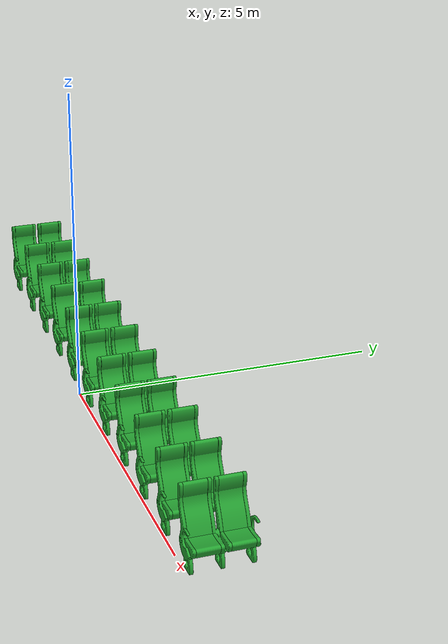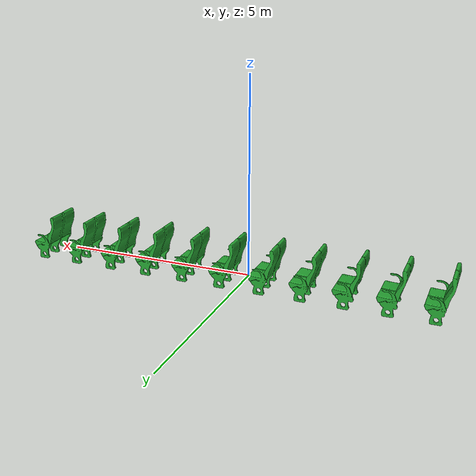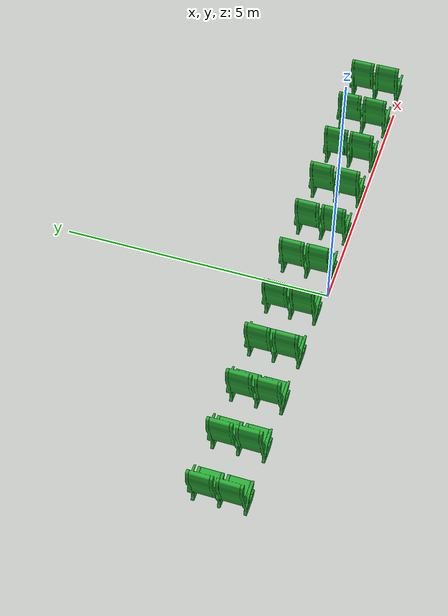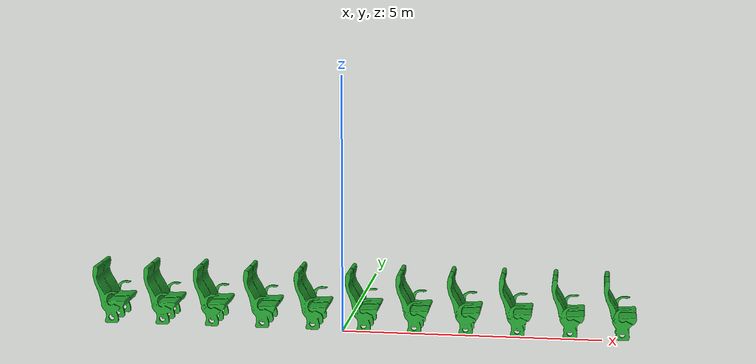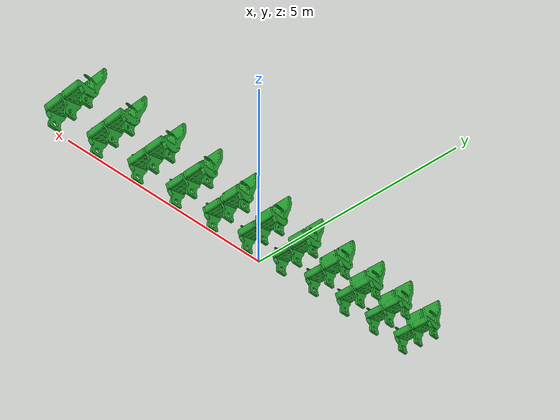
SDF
<?xml version='1.0'?>
<sdf version='1.7'>
  <model name='seat1_row'>
    <model name='seat1'>
      <link name='link_1'>
        <inertial>
          <mass>0</mass>
          <inertia>
            <ixx>0</ixx>
            <ixy>0</ixy>
            <ixz>0</ixz>
            <iyy>0</iyy>
            <iyz>0</iyz>
            <izz>0</izz>
          </inertia>
          <pose>0 0 0 0 -0 0</pose>
        </inertial>
        <pose>0 0 0 0 -0 0</pose>
        <gravity>0</gravity>
        <self_collide>0</self_collide>
        <kinematic>0</kinematic>
        <enable_wind>0</enable_wind>
        <visual name='visual'>
          <pose>0 0 0 0 -0 0</pose>
          <geometry>
            <mesh>
              <uri>model://seat1_row/meshes/seat1.stl</uri>
              <scale>0.001 0.001 0.001</scale>
            </mesh>
          </geometry>
          <material>
            <lighting>1</lighting>
            <script>
              <uri>file://media/materials/scripts/gazebo.material</uri>
              <name>Gazebo/Green</name>
            </script>
            <shader type='vertex'>
              <normal_map>__default__</normal_map>
            </shader>
            <ambient>0.3 0.3 0.3 1</ambient>
            <diffuse>0.7 0.7 0.7 1</diffuse>
            <specular>0.01 0.01 0.01 1</specular>
            <emissive>0 0 0 1</emissive>
          </material>
          <transparency>0</transparency>
          <cast_shadows>1</cast_shadows>
        </visual>
        <collision name='collision'>
          <laser_retro>0</laser_retro>
          <max_contacts>10</max_contacts>
          <pose>0 0 0 0 -0 0</pose>
          <geometry>
            <mesh>
              <uri>model://seat1_row/meshes/seat1.stl</uri>
              <scale>0.001 0.001 0.001</scale>
            </mesh>
          </geometry>
          <surface>
            <friction>
              <ode>
                <mu>100000</mu>
                <mu2>100000</mu2>
                <fdir1>0 0 0</fdir1>
                <slip1>0</slip1>
                <slip2>0</slip2>
              </ode>
              <torsional>
                <coefficient>1</coefficient>
                <patch_radius>0</patch_radius>
                <surface_radius>0</surface_radius>
                <use_patch_radius>1</use_patch_radius>
                <ode>
                  <slip>0</slip>
                </ode>
              </torsional>
            </friction>
            <bounce>
              <restitution_coefficient>0</restitution_coefficient>
              <threshold>1e+06</threshold>
            </bounce>
            <contact>
              <collide_without_contact>0</collide_without_contact>
              <collide_without_contact_bitmask>1</collide_without_contact_bitmask>
              <collide_bitmask>1</collide_bitmask>
              <ode>
                <soft_cfm>0</soft_cfm>
                <soft_erp>0.2</soft_erp>
                <kp>1e+13</kp>
                <kd>1</kd>
                <max_vel>0.01</max_vel>
                <min_depth>0</min_depth>
              </ode>
              <bullet>
                <split_impulse>1</split_impulse>
                <split_impulse_penetration_threshold>-0.01</split_impulse_penetration_threshold>
                <soft_cfm>0</soft_cfm>
                <soft_erp>0.2</soft_erp>
                <kp>1e+13</kp>
                <kd>1</kd>
              </bullet>
            </contact>
          </surface>
        </collision>
      </link>
      <static>0</static>
      <allow_auto_disable>1</allow_auto_disable>
      <pose>-5.0343 -0.01706 0 0 -0 0</pose>
    </model>
    <model name='seat1_0'>
      <link name='link_1'>
        <inertial>
          <mass>0</mass>
          <inertia>
            <ixx>0</ixx>
            <ixy>0</ixy>
            <ixz>0</ixz>
            <iyy>0</iyy>
            <iyz>0</iyz>
            <izz>0</izz>
          </inertia>
          <pose>0 0 0 0 -0 0</pose>
        </inertial>
        <pose>0 0 0 0 -0 0</pose>
        <gravity>0</gravity>
        <self_collide>0</self_collide>
        <kinematic>0</kinematic>
        <enable_wind>0</enable_wind>
        <visual name='visual'>
          <pose>0 0 0 0 -0 0</pose>
          <geometry>
            <mesh>
              <uri>model://seat1_row/meshes/seat1.stl</uri>
              <scale>0.001 0.001 0.001</scale>
            </mesh>
          </geometry>
          <material>
            <lighting>1</lighting>
            <script>
              <uri>file://media/materials/scripts/gazebo.material</uri>
              <name>Gazebo/Green</name>
            </script>
            <shader type='vertex'>
              <normal_map>__default__</normal_map>
            </shader>
            <ambient>0.3 0.3 0.3 1</ambient>
            <diffuse>0.7 0.7 0.7 1</diffuse>
            <specular>0.01 0.01 0.01 1</specular>
            <emissive>0 0 0 1</emissive>
          </material>
          <transparency>0</transparency>
          <cast_shadows>1</cast_shadows>
        </visual>
        <collision name='collision'>
          <laser_retro>0</laser_retro>
          <max_contacts>10</max_contacts>
          <pose>0 0 0 0 -0 0</pose>
          <geometry>
            <mesh>
              <uri>model://seat1_row/meshes/seat1.stl</uri>
              <scale>0.001 0.001 0.001</scale>
            </mesh>
          </geometry>
          <surface>
            <friction>
              <ode>
                <mu>100000</mu>
                <mu2>100000</mu2>
                <fdir1>0 0 0</fdir1>
                <slip1>0</slip1>
                <slip2>0</slip2>
              </ode>
              <torsional>
                <coefficient>1</coefficient>
                <patch_radius>0</patch_radius>
                <surface_radius>0</surface_radius>
                <use_patch_radius>1</use_patch_radius>
                <ode>
                  <slip>0</slip>
                </ode>
              </torsional>
            </friction>
            <bounce>
              <restitution_coefficient>0</restitution_coefficient>
              <threshold>1e+06</threshold>
            </bounce>
            <contact>
              <collide_without_contact>0</collide_without_contact>
              <collide_without_contact_bitmask>1</collide_without_contact_bitmask>
              <collide_bitmask>1</collide_bitmask>
              <ode>
                <soft_cfm>0</soft_cfm>
                <soft_erp>0.2</soft_erp>
                <kp>1e+13</kp>
                <kd>1</kd>
                <max_vel>0.01</max_vel>
                <min_depth>0</min_depth>
              </ode>
              <bullet>
                <split_impulse>1</split_impulse>
                <split_impulse_penetration_threshold>-0.01</split_impulse_penetration_threshold>
                <soft_cfm>0</soft_cfm>
                <soft_erp>0.2</soft_erp>
                <kp>1e+13</kp>
                <kd>1</kd>
              </bullet>
            </contact>
          </surface>
        </collision>
      </link>
      <static>0</static>
      <allow_auto_disable>1</allow_auto_disable>
      <pose>-4.00584 -0.001062 0 0 -0 0</pose>
    </model>
    <model name='seat1_1'>
      <link name='link_1'>
        <inertial>
          <mass>0</mass>
          <inertia>
            <ixx>0</ixx>
            <ixy>0</ixy>
            <ixz>0</ixz>
            <iyy>0</iyy>
            <iyz>0</iyz>
            <izz>0</izz>
          </inertia>
          <pose>0 0 0 0 -0 0</pose>
        </inertial>
        <pose>0 0 0 0 -0 0</pose>
        <gravity>0</gravity>
        <self_collide>0</self_collide>
        <kinematic>0</kinematic>
        <enable_wind>0</enable_wind>
        <visual name='visual'>
          <pose>0 0 0 0 -0 0</pose>
          <geometry>
            <mesh>
              <uri>model://seat1_row/meshes/seat1.stl</uri>
              <scale>0.001 0.001 0.001</scale>
            </mesh>
          </geometry>
          <material>
            <lighting>1</lighting>
            <script>
              <uri>file://media/materials/scripts/gazebo.material</uri>
              <name>Gazebo/Green</name>
            </script>
            <shader type='vertex'>
              <normal_map>__default__</normal_map>
            </shader>
            <ambient>0.3 0.3 0.3 1</ambient>
            <diffuse>0.7 0.7 0.7 1</diffuse>
            <specular>0.01 0.01 0.01 1</specular>
            <emissive>0 0 0 1</emissive>
          </material>
          <transparency>0</transparency>
          <cast_shadows>1</cast_shadows>
        </visual>
        <collision name='collision'>
          <laser_retro>0</laser_retro>
          <max_contacts>10</max_contacts>
          <pose>0 0 0 0 -0 0</pose>
          <geometry>
            <mesh>
              <uri>model://seat1_row/meshes/seat1.stl</uri>
              <scale>0.001 0.001 0.001</scale>
            </mesh>
          </geometry>
          <surface>
            <friction>
              <ode>
                <mu>100000</mu>
                <mu2>100000</mu2>
                <fdir1>0 0 0</fdir1>
                <slip1>0</slip1>
                <slip2>0</slip2>
              </ode>
              <torsional>
                <coefficient>1</coefficient>
                <patch_radius>0</patch_radius>
                <surface_radius>0</surface_radius>
                <use_patch_radius>1</use_patch_radius>
                <ode>
                  <slip>0</slip>
                </ode>
              </torsional>
            </friction>
            <bounce>
              <restitution_coefficient>0</restitution_coefficient>
              <threshold>1e+06</threshold>
            </bounce>
            <contact>
              <collide_without_contact>0</collide_without_contact>
              <collide_without_contact_bitmask>1</collide_without_contact_bitmask>
              <collide_bitmask>1</collide_bitmask>
              <ode>
                <soft_cfm>0</soft_cfm>
                <soft_erp>0.2</soft_erp>
                <kp>1e+13</kp>
                <kd>1</kd>
                <max_vel>0.01</max_vel>
                <min_depth>0</min_depth>
              </ode>
              <bullet>
                <split_impulse>1</split_impulse>
                <split_impulse_penetration_threshold>-0.01</split_impulse_penetration_threshold>
                <soft_cfm>0</soft_cfm>
                <soft_erp>0.2</soft_erp>
                <kp>1e+13</kp>
                <kd>1</kd>
              </bullet>
            </contact>
          </surface>
        </collision>
      </link>
      <static>0</static>
      <allow_auto_disable>1</allow_auto_disable>
      <pose>-3.00666 0.000776 0 0 -0 0</pose>
    </model>
    <model name='seat1_2'>
      <link name='link_1'>
        <inertial>
          <mass>0</mass>
          <inertia>
            <ixx>0</ixx>
            <ixy>0</ixy>
            <ixz>0</ixz>
            <iyy>0</iyy>
            <iyz>0</iyz>
            <izz>0</izz>
          </inertia>
          <pose>0 0 0 0 -0 0</pose>
        </inertial>
        <pose>0 0 0 0 -0 0</pose>
        <gravity>0</gravity>
        <self_collide>0</self_collide>
        <kinematic>0</kinematic>
        <enable_wind>0</enable_wind>
        <visual name='visual'>
          <pose>0 0 0 0 -0 0</pose>
          <geometry>
            <mesh>
              <uri>model://seat1_row/meshes/seat1.stl</uri>
              <scale>0.001 0.001 0.001</scale>
            </mesh>
          </geometry>
          <material>
            <lighting>1</lighting>
            <script>
              <uri>file://media/materials/scripts/gazebo.material</uri>
              <name>Gazebo/Green</name>
            </script>
            <shader type='vertex'>
              <normal_map>__default__</normal_map>
            </shader>
            <ambient>0.3 0.3 0.3 1</ambient>
            <diffuse>0.7 0.7 0.7 1</diffuse>
            <specular>0.01 0.01 0.01 1</specular>
            <emissive>0 0 0 1</emissive>
          </material>
          <transparency>0</transparency>
          <cast_shadows>1</cast_shadows>
        </visual>
        <collision name='collision'>
          <laser_retro>0</laser_retro>
          <max_contacts>10</max_contacts>
          <pose>0 0 0 0 -0 0</pose>
          <geometry>
            <mesh>
              <uri>model://seat1_row/meshes/seat1.stl</uri>
              <scale>0.001 0.001 0.001</scale>
            </mesh>
          </geometry>
          <surface>
            <friction>
              <ode>
                <mu>100000</mu>
                <mu2>100000</mu2>
                <fdir1>0 0 0</fdir1>
                <slip1>0</slip1>
                <slip2>0</slip2>
              </ode>
              <torsional>
                <coefficient>1</coefficient>
                <patch_radius>0</patch_radius>
                <surface_radius>0</surface_radius>
                <use_patch_radius>1</use_patch_radius>
                <ode>
                  <slip>0</slip>
                </ode>
              </torsional>
            </friction>
            <bounce>
              <restitution_coefficient>0</restitution_coefficient>
              <threshold>1e+06</threshold>
            </bounce>
            <contact>
              <collide_without_contact>0</collide_without_contact>
              <collide_without_contact_bitmask>1</collide_without_contact_bitmask>
              <collide_bitmask>1</collide_bitmask>
              <ode>
                <soft_cfm>0</soft_cfm>
                <soft_erp>0.2</soft_erp>
                <kp>1e+13</kp>
                <kd>1</kd>
                <max_vel>0.01</max_vel>
                <min_depth>0</min_depth>
              </ode>
              <bullet>
                <split_impulse>1</split_impulse>
                <split_impulse_penetration_threshold>-0.01</split_impulse_penetration_threshold>
                <soft_cfm>0</soft_cfm>
                <soft_erp>0.2</soft_erp>
                <kp>1e+13</kp>
                <kd>1</kd>
              </bullet>
            </contact>
          </surface>
        </collision>
      </link>
      <static>0</static>
      <allow_auto_disable>1</allow_auto_disable>
      <pose>-1.99785 0.004244 0 0 -0 0</pose>
    </model>
    <model name='seat1_3'>
      <link name='link_1'>
        <inertial>
          <mass>0</mass>
          <inertia>
            <ixx>0</ixx>
            <ixy>0</ixy>
            <ixz>0</ixz>
            <iyy>0</iyy>
            <iyz>0</iyz>
            <izz>0</izz>
          </inertia>
          <pose>0 0 0 0 -0 0</pose>
        </inertial>
        <pose>0 0 0 0 -0 0</pose>
        <gravity>0</gravity>
        <self_collide>0</self_collide>
        <kinematic>0</kinematic>
        <enable_wind>0</enable_wind>
        <visual name='visual'>
          <pose>0 0 0 0 -0 0</pose>
          <geometry>
            <mesh>
              <uri>model://seat1_row/meshes/seat1.stl</uri>
              <scale>0.001 0.001 0.001</scale>
            </mesh>
          </geometry>
          <material>
            <lighting>1</lighting>
            <script>
              <uri>file://media/materials/scripts/gazebo.material</uri>
              <name>Gazebo/Green</name>
            </script>
            <shader type='vertex'>
              <normal_map>__default__</normal_map>
            </shader>
            <ambient>0.3 0.3 0.3 1</ambient>
            <diffuse>0.7 0.7 0.7 1</diffuse>
            <specular>0.01 0.01 0.01 1</specular>
            <emissive>0 0 0 1</emissive>
          </material>
          <transparency>0</transparency>
          <cast_shadows>1</cast_shadows>
        </visual>
        <collision name='collision'>
          <laser_retro>0</laser_retro>
          <max_contacts>10</max_contacts>
          <pose>0 0 0 0 -0 0</pose>
          <geometry>
            <mesh>
              <uri>model://seat1_row/meshes/seat1.stl</uri>
              <scale>0.001 0.001 0.001</scale>
            </mesh>
          </geometry>
          <surface>
            <friction>
              <ode>
                <mu>100000</mu>
                <mu2>100000</mu2>
                <fdir1>0 0 0</fdir1>
                <slip1>0</slip1>
                <slip2>0</slip2>
              </ode>
              <torsional>
                <coefficient>1</coefficient>
                <patch_radius>0</patch_radius>
                <surface_radius>0</surface_radius>
                <use_patch_radius>1</use_patch_radius>
                <ode>
                  <slip>0</slip>
                </ode>
              </torsional>
            </friction>
            <bounce>
              <restitution_coefficient>0</restitution_coefficient>
              <threshold>1e+06</threshold>
            </bounce>
            <contact>
              <collide_without_contact>0</collide_without_contact>
              <collide_without_contact_bitmask>1</collide_without_contact_bitmask>
              <collide_bitmask>1</collide_bitmask>
              <ode>
                <soft_cfm>0</soft_cfm>
                <soft_erp>0.2</soft_erp>
                <kp>1e+13</kp>
                <kd>1</kd>
                <max_vel>0.01</max_vel>
                <min_depth>0</min_depth>
              </ode>
              <bullet>
                <split_impulse>1</split_impulse>
                <split_impulse_penetration_threshold>-0.01</split_impulse_penetration_threshold>
                <soft_cfm>0</soft_cfm>
                <soft_erp>0.2</soft_erp>
                <kp>1e+13</kp>
                <kd>1</kd>
              </bullet>
            </contact>
          </surface>
        </collision>
      </link>
      <static>0</static>
      <allow_auto_disable>1</allow_auto_disable>
      <pose>-0.992785 0.003913 0 0 -0 0</pose>
    </model>
    <model name='seat1_4'>
      <link name='link_1'>
        <inertial>
          <mass>0</mass>
          <inertia>
            <ixx>0</ixx>
            <ixy>0</ixy>
            <ixz>0</ixz>
            <iyy>0</iyy>
            <iyz>0</iyz>
            <izz>0</izz>
          </inertia>
          <pose>0 0 0 0 -0 0</pose>
        </inertial>
        <pose>0 0 0 0 -0 0</pose>
        <gravity>0</gravity>
        <self_collide>0</self_collide>
        <kinematic>0</kinematic>
        <enable_wind>0</enable_wind>
        <visual name='visual'>
          <pose>0 0 0 0 -0 0</pose>
          <geometry>
            <mesh>
              <uri>model://seat1_row/meshes/seat1.stl</uri>
              <scale>0.001 0.001 0.001</scale>
            </mesh>
          </geometry>
          <material>
            <lighting>1</lighting>
            <script>
              <uri>file://media/materials/scripts/gazebo.material</uri>
              <name>Gazebo/Green</name>
            </script>
            <shader type='vertex'>
              <normal_map>__default__</normal_map>
            </shader>
            <ambient>0.3 0.3 0.3 1</ambient>
            <diffuse>0.7 0.7 0.7 1</diffuse>
            <specular>0.01 0.01 0.01 1</specular>
            <emissive>0 0 0 1</emissive>
          </material>
          <transparency>0</transparency>
          <cast_shadows>1</cast_shadows>
        </visual>
        <collision name='collision'>
          <laser_retro>0</laser_retro>
          <max_contacts>10</max_contacts>
          <pose>0 0 0 0 -0 0</pose>
          <geometry>
            <mesh>
              <uri>model://seat1_row/meshes/seat1.stl</uri>
              <scale>0.001 0.001 0.001</scale>
            </mesh>
          </geometry>
          <surface>
            <friction>
              <ode>
                <mu>100000</mu>
                <mu2>100000</mu2>
                <fdir1>0 0 0</fdir1>
                <slip1>0</slip1>
                <slip2>0</slip2>
              </ode>
              <torsional>
                <coefficient>1</coefficient>
                <patch_radius>0</patch_radius>
                <surface_radius>0</surface_radius>
                <use_patch_radius>1</use_patch_radius>
                <ode>
                  <slip>0</slip>
                </ode>
              </torsional>
            </friction>
            <bounce>
              <restitution_coefficient>0</restitution_coefficient>
              <threshold>1e+06</threshold>
            </bounce>
            <contact>
              <collide_without_contact>0</collide_without_contact>
              <collide_without_contact_bitmask>1</collide_without_contact_bitmask>
              <collide_bitmask>1</collide_bitmask>
              <ode>
                <soft_cfm>0</soft_cfm>
                <soft_erp>0.2</soft_erp>
                <kp>1e+13</kp>
                <kd>1</kd>
                <max_vel>0.01</max_vel>
                <min_depth>0</min_depth>
              </ode>
              <bullet>
                <split_impulse>1</split_impulse>
                <split_impulse_penetration_threshold>-0.01</split_impulse_penetration_threshold>
                <soft_cfm>0</soft_cfm>
                <soft_erp>0.2</soft_erp>
                <kp>1e+13</kp>
                <kd>1</kd>
              </bullet>
            </contact>
          </surface>
        </collision>
      </link>
      <static>0</static>
      <allow_auto_disable>1</allow_auto_disable>
      <pose>0.016228 0.001473 0 0 -0 0</pose>
    </model>
    <model name='seat1_5'>
      <link name='link_1'>
        <inertial>
          <mass>0</mass>
          <inertia>
            <ixx>0</ixx>
            <ixy>0</ixy>
            <ixz>0</ixz>
            <iyy>0</iyy>
            <iyz>0</iyz>
            <izz>0</izz>
          </inertia>
          <pose>0 0 0 0 -0 0</pose>
        </inertial>
        <pose>0 0 0 0 -0 0</pose>
        <gravity>0</gravity>
        <self_collide>0</self_collide>
        <kinematic>0</kinematic>
        <enable_wind>0</enable_wind>
        <visual name='visual'>
          <pose>0 0 0 0 -0 0</pose>
          <geometry>
            <mesh>
              <uri>model://seat1_row/meshes/seat1.stl</uri>
              <scale>0.001 0.001 0.001</scale>
            </mesh>
          </geometry>
          <material>
            <lighting>1</lighting>
            <script>
              <uri>file://media/materials/scripts/gazebo.material</uri>
              <name>Gazebo/Green</name>
            </script>
            <shader type='vertex'>
              <normal_map>__default__</normal_map>
            </shader>
            <ambient>0.3 0.3 0.3 1</ambient>
            <diffuse>0.7 0.7 0.7 1</diffuse>
            <specular>0.01 0.01 0.01 1</specular>
            <emissive>0 0 0 1</emissive>
          </material>
          <transparency>0</transparency>
          <cast_shadows>1</cast_shadows>
        </visual>
        <collision name='collision'>
          <laser_retro>0</laser_retro>
          <max_contacts>10</max_contacts>
          <pose>0 0 0 0 -0 0</pose>
          <geometry>
            <mesh>
              <uri>model://seat1_row/meshes/seat1.stl</uri>
              <scale>0.001 0.001 0.001</scale>
            </mesh>
          </geometry>
          <surface>
            <friction>
              <ode>
                <mu>100000</mu>
                <mu2>100000</mu2>
                <fdir1>0 0 0</fdir1>
                <slip1>0</slip1>
                <slip2>0</slip2>
              </ode>
              <torsional>
                <coefficient>1</coefficient>
                <patch_radius>0</patch_radius>
                <surface_radius>0</surface_radius>
                <use_patch_radius>1</use_patch_radius>
                <ode>
                  <slip>0</slip>
                </ode>
              </torsional>
            </friction>
            <bounce>
              <restitution_coefficient>0</restitution_coefficient>
              <threshold>1e+06</threshold>
            </bounce>
            <contact>
              <collide_without_contact>0</collide_without_contact>
              <collide_without_contact_bitmask>1</collide_without_contact_bitmask>
              <collide_bitmask>1</collide_bitmask>
              <ode>
                <soft_cfm>0</soft_cfm>
                <soft_erp>0.2</soft_erp>
                <kp>1e+13</kp>
                <kd>1</kd>
                <max_vel>0.01</max_vel>
                <min_depth>0</min_depth>
              </ode>
              <bullet>
                <split_impulse>1</split_impulse>
                <split_impulse_penetration_threshold>-0.01</split_impulse_penetration_threshold>
                <soft_cfm>0</soft_cfm>
                <soft_erp>0.2</soft_erp>
                <kp>1e+13</kp>
                <kd>1</kd>
              </bullet>
            </contact>
          </surface>
        </collision>
      </link>
      <static>0</static>
      <allow_auto_disable>1</allow_auto_disable>
      <pose>1.00599 0.000701 0 0 -0 0</pose>
    </model>
    <model name='seat1_6'>
      <link name='link_1'>
        <inertial>
          <mass>0</mass>
          <inertia>
            <ixx>0</ixx>
            <ixy>0</ixy>
            <ixz>0</ixz>
            <iyy>0</iyy>
            <iyz>0</iyz>
            <izz>0</izz>
          </inertia>
          <pose>0 0 0 0 -0 0</pose>
        </inertial>
        <pose>0 0 0 0 -0 0</pose>
        <gravity>0</gravity>
        <self_collide>0</self_collide>
        <kinematic>0</kinematic>
        <enable_wind>0</enable_wind>
        <visual name='visual'>
          <pose>0 0 0 0 -0 0</pose>
          <geometry>
            <mesh>
              <uri>model://seat1_row/meshes/seat1.stl</uri>
              <scale>0.001 0.001 0.001</scale>
            </mesh>
          </geometry>
          <material>
            <lighting>1</lighting>
            <script>
              <uri>file://media/materials/scripts/gazebo.material</uri>
              <name>Gazebo/Green</name>
            </script>
            <shader type='vertex'>
              <normal_map>__default__</normal_map>
            </shader>
            <ambient>0.3 0.3 0.3 1</ambient>
            <diffuse>0.7 0.7 0.7 1</diffuse>
            <specular>0.01 0.01 0.01 1</specular>
            <emissive>0 0 0 1</emissive>
          </material>
          <transparency>0</transparency>
          <cast_shadows>1</cast_shadows>
        </visual>
        <collision name='collision'>
          <laser_retro>0</laser_retro>
          <max_contacts>10</max_contacts>
          <pose>0 0 0 0 -0 0</pose>
          <geometry>
            <mesh>
              <uri>model://seat1_row/meshes/seat1.stl</uri>
              <scale>0.001 0.001 0.001</scale>
            </mesh>
          </geometry>
          <surface>
            <friction>
              <ode>
                <mu>100000</mu>
                <mu2>100000</mu2>
                <fdir1>0 0 0</fdir1>
                <slip1>0</slip1>
                <slip2>0</slip2>
              </ode>
              <torsional>
                <coefficient>1</coefficient>
                <patch_radius>0</patch_radius>
                <surface_radius>0</surface_radius>
                <use_patch_radius>1</use_patch_radius>
                <ode>
                  <slip>0</slip>
                </ode>
              </torsional>
            </friction>
            <bounce>
              <restitution_coefficient>0</restitution_coefficient>
              <threshold>1e+06</threshold>
            </bounce>
            <contact>
              <collide_without_contact>0</collide_without_contact>
              <collide_without_contact_bitmask>1</collide_without_contact_bitmask>
              <collide_bitmask>1</collide_bitmask>
              <ode>
                <soft_cfm>0</soft_cfm>
                <soft_erp>0.2</soft_erp>
                <kp>1e+13</kp>
                <kd>1</kd>
                <max_vel>0.01</max_vel>
                <min_depth>0</min_depth>
              </ode>
              <bullet>
                <split_impulse>1</split_impulse>
                <split_impulse_penetration_threshold>-0.01</split_impulse_penetration_threshold>
                <soft_cfm>0</soft_cfm>
                <soft_erp>0.2</soft_erp>
                <kp>1e+13</kp>
                <kd>1</kd>
              </bullet>
            </contact>
          </surface>
        </collision>
      </link>
      <static>0</static>
      <allow_auto_disable>1</allow_auto_disable>
      <pose>2.00535 0.002232 0 0 -0 0</pose>
    </model>
    <model name='seat1_7'>
      <link name='link_1'>
        <inertial>
          <mass>0</mass>
          <inertia>
            <ixx>0</ixx>
            <ixy>0</ixy>
            <ixz>0</ixz>
            <iyy>0</iyy>
            <iyz>0</iyz>
            <izz>0</izz>
          </inertia>
          <pose>0 0 0 0 -0 0</pose>
        </inertial>
        <pose>0 0 0 0 -0 0</pose>
        <gravity>0</gravity>
        <self_collide>0</self_collide>
        <kinematic>0</kinematic>
        <enable_wind>0</enable_wind>
        <visual name='visual'>
          <pose>0 0 0 0 -0 0</pose>
          <geometry>
            <mesh>
              <uri>model://seat1_row/meshes/seat1.stl</uri>
              <scale>0.001 0.001 0.001</scale>
            </mesh>
          </geometry>
          <material>
            <lighting>1</lighting>
            <script>
              <uri>file://media/materials/scripts/gazebo.material</uri>
              <name>Gazebo/Green</name>
            </script>
            <shader type='vertex'>
              <normal_map>__default__</normal_map>
            </shader>
            <ambient>0.3 0.3 0.3 1</ambient>
            <diffuse>0.7 0.7 0.7 1</diffuse>
            <specular>0.01 0.01 0.01 1</specular>
            <emissive>0 0 0 1</emissive>
          </material>
          <transparency>0</transparency>
          <cast_shadows>1</cast_shadows>
        </visual>
        <collision name='collision'>
          <laser_retro>0</laser_retro>
          <max_contacts>10</max_contacts>
          <pose>0 0 0 0 -0 0</pose>
          <geometry>
            <mesh>
              <uri>model://seat1_row/meshes/seat1.stl</uri>
              <scale>0.001 0.001 0.001</scale>
            </mesh>
          </geometry>
          <surface>
            <friction>
              <ode>
                <mu>100000</mu>
                <mu2>100000</mu2>
                <fdir1>0 0 0</fdir1>
                <slip1>0</slip1>
                <slip2>0</slip2>
              </ode>
              <torsional>
                <coefficient>1</coefficient>
                <patch_radius>0</patch_radius>
                <surface_radius>0</surface_radius>
                <use_patch_radius>1</use_patch_radius>
                <ode>
                  <slip>0</slip>
                </ode>
              </torsional>
            </friction>
            <bounce>
              <restitution_coefficient>0</restitution_coefficient>
              <threshold>1e+06</threshold>
            </bounce>
            <contact>
              <collide_without_contact>0</collide_without_contact>
              <collide_without_contact_bitmask>1</collide_without_contact_bitmask>
              <collide_bitmask>1</collide_bitmask>
              <ode>
                <soft_cfm>0</soft_cfm>
                <soft_erp>0.2</soft_erp>
                <kp>1e+13</kp>
                <kd>1</kd>
                <max_vel>0.01</max_vel>
                <min_depth>0</min_depth>
              </ode>
              <bullet>
                <split_impulse>1</split_impulse>
                <split_impulse_penetration_threshold>-0.01</split_impulse_penetration_threshold>
                <soft_cfm>0</soft_cfm>
                <soft_erp>0.2</soft_erp>
                <kp>1e+13</kp>
                <kd>1</kd>
              </bullet>
            </contact>
          </surface>
        </collision>
      </link>
      <static>0</static>
      <allow_auto_disable>1</allow_auto_disable>
      <pose>3.00014 0.001951 0 0 -0 0</pose>
    </model>
    <model name='seat1_8'>
      <link name='link_1'>
        <inertial>
          <mass>0</mass>
          <inertia>
            <ixx>0</ixx>
            <ixy>0</ixy>
            <ixz>0</ixz>
            <iyy>0</iyy>
            <iyz>0</iyz>
            <izz>0</izz>
          </inertia>
          <pose>0 0 0 0 -0 0</pose>
        </inertial>
        <pose>0 0 0 0 -0 0</pose>
        <gravity>0</gravity>
        <self_collide>0</self_collide>
        <kinematic>0</kinematic>
        <enable_wind>0</enable_wind>
        <visual name='visual'>
          <pose>0 0 0 0 -0 0</pose>
          <geometry>
            <mesh>
              <uri>model://seat1_row/meshes/seat1.stl</uri>
              <scale>0.001 0.001 0.001</scale>
            </mesh>
          </geometry>
          <material>
            <lighting>1</lighting>
            <script>
              <uri>file://media/materials/scripts/gazebo.material</uri>
              <name>Gazebo/Green</name>
            </script>
            <shader type='vertex'>
              <normal_map>__default__</normal_map>
            </shader>
            <ambient>0.3 0.3 0.3 1</ambient>
            <diffuse>0.7 0.7 0.7 1</diffuse>
            <specular>0.01 0.01 0.01 1</specular>
            <emissive>0 0 0 1</emissive>
          </material>
          <transparency>0</transparency>
          <cast_shadows>1</cast_shadows>
        </visual>
        <collision name='collision'>
          <laser_retro>0</laser_retro>
          <max_contacts>10</max_contacts>
          <pose>0 0 0 0 -0 0</pose>
          <geometry>
            <mesh>
              <uri>model://seat1_row/meshes/seat1.stl</uri>
              <scale>0.001 0.001 0.001</scale>
            </mesh>
          </geometry>
          <surface>
            <friction>
              <ode>
                <mu>100000</mu>
                <mu2>100000</mu2>
                <fdir1>0 0 0</fdir1>
                <slip1>0</slip1>
                <slip2>0</slip2>
              </ode>
              <torsional>
                <coefficient>1</coefficient>
                <patch_radius>0</patch_radius>
                <surface_radius>0</surface_radius>
                <use_patch_radius>1</use_patch_radius>
                <ode>
                  <slip>0</slip>
                </ode>
              </torsional>
            </friction>
            <bounce>
              <restitution_coefficient>0</restitution_coefficient>
              <threshold>1e+06</threshold>
            </bounce>
            <contact>
              <collide_without_contact>0</collide_without_contact>
              <collide_without_contact_bitmask>1</collide_without_contact_bitmask>
              <collide_bitmask>1</collide_bitmask>
              <ode>
                <soft_cfm>0</soft_cfm>
                <soft_erp>0.2</soft_erp>
                <kp>1e+13</kp>
                <kd>1</kd>
                <max_vel>0.01</max_vel>
                <min_depth>0</min_depth>
              </ode>
              <bullet>
                <split_impulse>1</split_impulse>
                <split_impulse_penetration_threshold>-0.01</split_impulse_penetration_threshold>
                <soft_cfm>0</soft_cfm>
                <soft_erp>0.2</soft_erp>
                <kp>1e+13</kp>
                <kd>1</kd>
              </bullet>
            </contact>
          </surface>
        </collision>
      </link>
      <static>0</static>
      <allow_auto_disable>1</allow_auto_disable>
      <pose>4.00893 0.002828 0 0 -0 0</pose>
    </model>
    <model name='seat1_9'>
      <link name='link_1'>
        <inertial>
          <mass>0</mass>
          <inertia>
            <ixx>0</ixx>
            <ixy>0</ixy>
            <ixz>0</ixz>
            <iyy>0</iyy>
            <iyz>0</iyz>
            <izz>0</izz>
          </inertia>
          <pose>0 0 0 0 -0 0</pose>
        </inertial>
        <pose>0 0 0 0 -0 0</pose>
        <gravity>0</gravity>
        <self_collide>0</self_collide>
        <kinematic>0</kinematic>
        <enable_wind>0</enable_wind>
        <visual name='visual'>
          <pose>0 0 0 0 -0 0</pose>
          <geometry>
            <mesh>
              <uri>model://seat1_row/meshes/seat1.stl</uri>
              <scale>0.001 0.001 0.001</scale>
            </mesh>
          </geometry>
          <material>
            <lighting>1</lighting>
            <script>
              <uri>file://media/materials/scripts/gazebo.material</uri>
              <name>Gazebo/Green</name>
            </script>
            <shader type='vertex'>
              <normal_map>__default__</normal_map>
            </shader>
            <ambient>0.3 0.3 0.3 1</ambient>
            <diffuse>0.7 0.7 0.7 1</diffuse>
            <specular>0.01 0.01 0.01 1</specular>
            <emissive>0 0 0 1</emissive>
          </material>
          <transparency>0</transparency>
          <cast_shadows>1</cast_shadows>
        </visual>
        <collision name='collision'>
          <laser_retro>0</laser_retro>
          <max_contacts>10</max_contacts>
          <pose>0 0 0 0 -0 0</pose>
          <geometry>
            <mesh>
              <uri>model://seat1_row/meshes/seat1.stl</uri>
              <scale>0.001 0.001 0.001</scale>
            </mesh>
          </geometry>
          <surface>
            <friction>
              <ode>
                <mu>100000</mu>
                <mu2>100000</mu2>
                <fdir1>0 0 0</fdir1>
                <slip1>0</slip1>
                <slip2>0</slip2>
              </ode>
              <torsional>
                <coefficient>1</coefficient>
                <patch_radius>0</patch_radius>
                <surface_radius>0</surface_radius>
                <use_patch_radius>1</use_patch_radius>
                <ode>
                  <slip>0</slip>
                </ode>
              </torsional>
            </friction>
            <bounce>
              <restitution_coefficient>0</restitution_coefficient>
              <threshold>1e+06</threshold>
            </bounce>
            <contact>
              <collide_without_contact>0</collide_without_contact>
              <collide_without_contact_bitmask>1</collide_without_contact_bitmask>
              <collide_bitmask>1</collide_bitmask>
              <ode>
                <soft_cfm>0</soft_cfm>
                <soft_erp>0.2</soft_erp>
                <kp>1e+13</kp>
                <kd>1</kd>
                <max_vel>0.01</max_vel>
                <min_depth>0</min_depth>
              </ode>
              <bullet>
                <split_impulse>1</split_impulse>
                <split_impulse_penetration_threshold>-0.01</split_impulse_penetration_threshold>
                <soft_cfm>0</soft_cfm>
                <soft_erp>0.2</soft_erp>
                <kp>1e+13</kp>
                <kd>1</kd>
              </bullet>
            </contact>
          </surface>
        </collision>
      </link>
      <static>0</static>
      <allow_auto_disable>1</allow_auto_disable>
      <pose>5.0008 5e-06 0 0 -0 0</pose>
    </model>
    <static>0</static>
    <allow_auto_disable>1</allow_auto_disable>
  </model>
</sdf>
